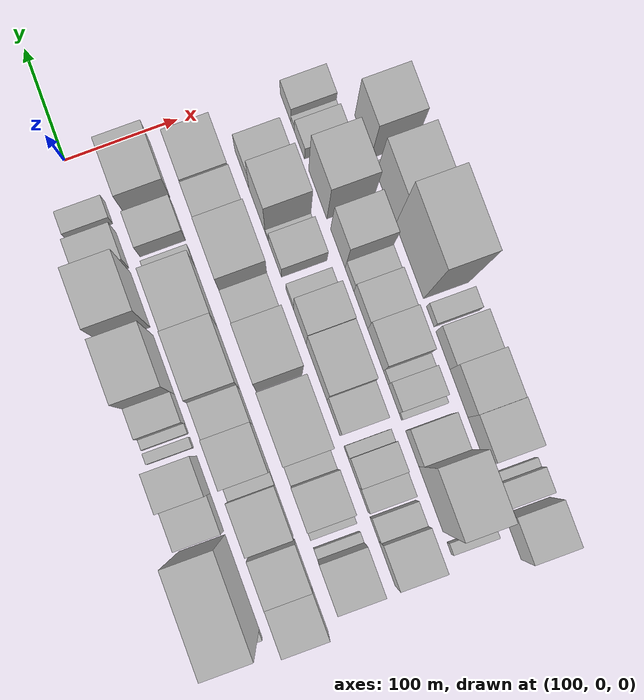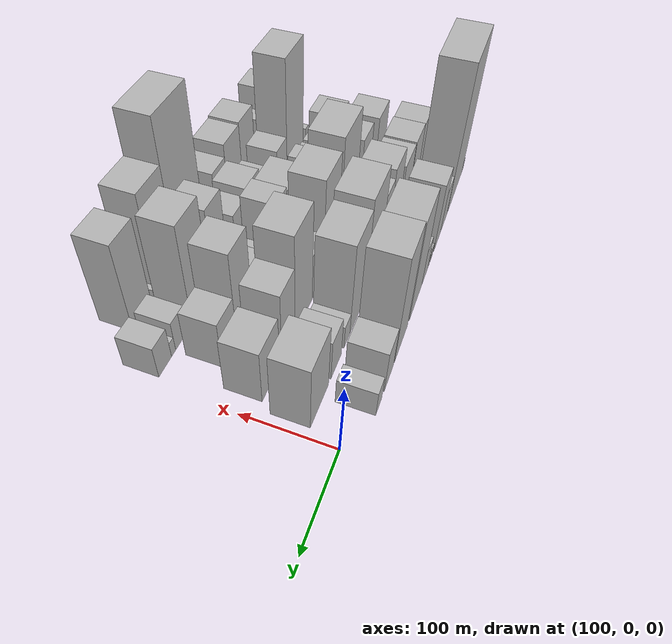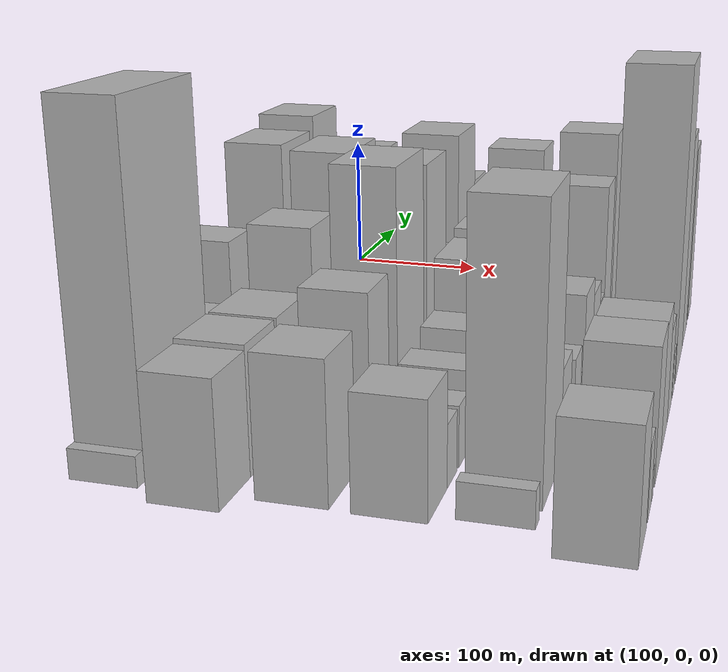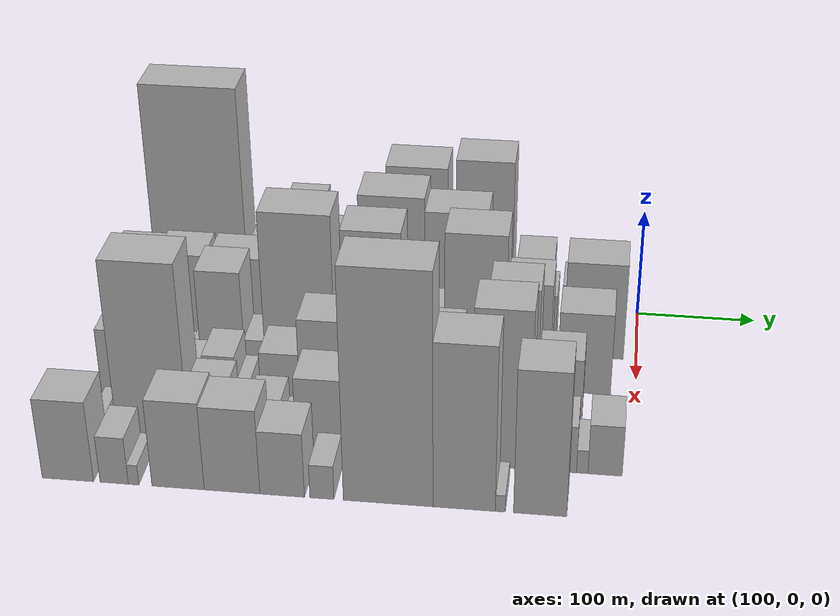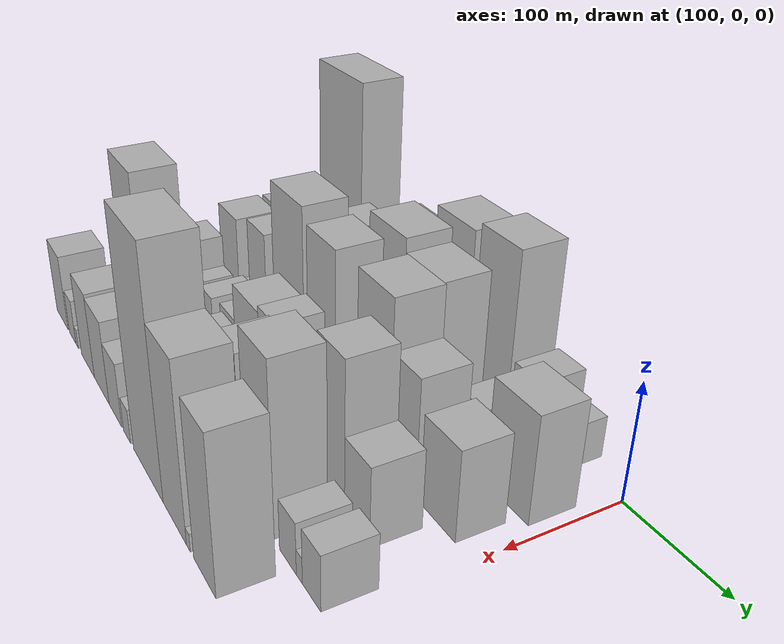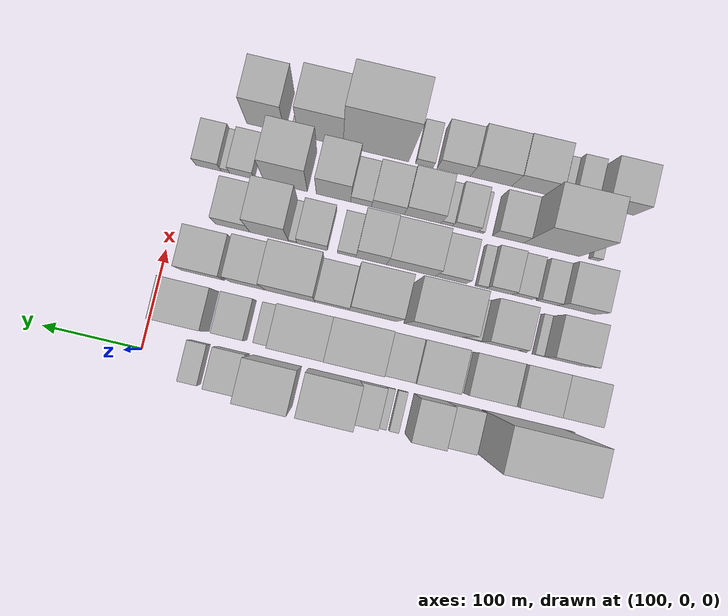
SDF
<sdf version="1.6">
 <world name="default">
  <model name="building_13">
   <static>1</static>
   <pose>100.0000 -422.3564 0 0.000000 0.000000 0.000000</pose>
   <link name="link">
    <pose>0 0 9.00 0 0 0</pose>
    <collision name="collision"><geometry><box><size>40.0000 7.9039 18.0000</size></box></geometry></collision>
    <visual name="visual">
     <cast_shadows>0</cast_shadows>
     <geometry><box><size>40.0000 7.9039 18.0000</size></box></geometry>
     <material>
      <script>
       <uri>model://HANNAS_wall/materials/scripts</uri>
       <uri>model://HANNAS_wall/materials/textures</uri>
       <name>vrc/HANNAS_wall</name>
      </script>
     </material>
    </visual>
   </link>
  </model>
  <model name="building_14">
   <static>1</static>
   <pose>100.0000 -377.7284 0 0.000000 0.000000 0.000000</pose>
   <link name="link">
    <pose>0 0 102.00 0 0 0</pose>
    <collision name="collision"><geometry><box><size>40.0000 81.3520 204.0000</size></box></geometry></collision>
    <visual name="visual">
     <cast_shadows>0</cast_shadows>
     <geometry><box><size>40.0000 81.3520 204.0000</size></box></geometry>
     <material>
      <script>
       <uri>model://HANNAS_wall/materials/scripts</uri>
       <uri>model://HANNAS_wall/materials/textures</uri>
       <name>vrc/HANNAS_wall</name>
      </script>
     </material>
    </visual>
   </link>
  </model>
  <model name="building_15">
   <static>1</static>
   <pose>100.0000 -317.7587 0 0.000000 0.000000 0.000000</pose>
   <link name="link">
    <pose>0 0 30.00 0 0 0</pose>
    <collision name="collision"><geometry><box><size>40.0000 32.5875 60.0000</size></box></geometry></collision>
    <visual name="visual">
     <cast_shadows>0</cast_shadows>
     <geometry><box><size>40.0000 32.5875 60.0000</size></box></geometry>
     <material>
      <script>
       <uri>model://HANNAS_wall/materials/scripts</uri>
       <uri>model://HANNAS_wall/materials/textures</uri>
       <name>vrc/HANNAS_wall</name>
      </script>
     </material>
    </visual>
   </link>
  </model>
  <model name="building_16">
   <static>1</static>
   <pose>100.0000 -285.1396 0 0.000000 0.000000 0.000000</pose>
   <link name="link">
    <pose>0 0 49.50 0 0 0</pose>
    <collision name="collision"><geometry><box><size>40.0000 32.6508 99.0000</size></box></geometry></collision>
    <visual name="visual">
     <cast_shadows>0</cast_shadows>
     <geometry><box><size>40.0000 32.6508 99.0000</size></box></geometry>
     <material>
      <script>
       <uri>model://HANNAS_wall/materials/scripts</uri>
       <uri>model://HANNAS_wall/materials/textures</uri>
       <name>vrc/HANNAS_wall</name>
      </script>
     </material>
    </visual>
   </link>
  </model>
  <model name="building_17">
   <static>1</static>
   <pose>100.0000 -257.1645 0 0.000000 0.000000 0.000000</pose>
   <link name="link">
    <pose>0 0 10.50 0 0 0</pose>
    <collision name="collision"><geometry><box><size>40.0000 9.2992 21.0000</size></box></geometry></collision>
    <visual name="visual">
     <cast_shadows>0</cast_shadows>
     <geometry><box><size>40.0000 9.2992 21.0000</size></box></geometry>
     <material>
      <script>
       <uri>model://HANNAS_wall/materials/scripts</uri>
       <uri>model://HANNAS_wall/materials/textures</uri>
       <name>vrc/HANNAS_wall</name>
      </script>
     </material>
    </visual>
   </link>
  </model>
  <model name="building_18">
   <static>1</static>
   <pose>100.0000 -245.1105 0 0.000000 0.000000 0.000000</pose>
   <link name="link">
    <pose>0 0 9.00 0 0 0</pose>
    <collision name="collision"><geometry><box><size>40.0000 8.8089 18.0000</size></box></geometry></collision>
    <visual name="visual">
     <cast_shadows>0</cast_shadows>
     <geometry><box><size>40.0000 8.8089 18.0000</size></box></geometry>
     <material>
      <script>
       <uri>model://HANNAS_wall/materials/scripts</uri>
       <uri>model://HANNAS_wall/materials/textures</uri>
       <name>vrc/HANNAS_wall</name>
      </script>
     </material>
    </visual>
   </link>
  </model>
  <model name="building_19">
   <static>1</static>
   <pose>100.0000 -227.7287 0 0.000000 0.000000 0.000000</pose>
   <link name="link">
    <pose>0 0 25.50 0 0 0</pose>
    <collision name="collision"><geometry><box><size>40.0000 25.9547 51.0000</size></box></geometry></collision>
    <visual name="visual">
     <cast_shadows>0</cast_shadows>
     <geometry><box><size>40.0000 25.9547 51.0000</size></box></geometry>
     <material>
      <script>
       <uri>model://HANNAS_wall/materials/scripts</uri>
       <uri>model://HANNAS_wall/materials/textures</uri>
       <name>vrc/HANNAS_wall</name>
      </script>
     </material>
    </visual>
   </link>
  </model>
  <model name="building_20">
   <static>1</static>
   <pose>100.0000 -188.9263 0 0.000000 0.000000 0.000000</pose>
   <link name="link">
    <pose>0 0 70.50 0 0 0</pose>
    <collision name="collision"><geometry><box><size>40.0000 51.6502 141.0000</size></box></geometry></collision>
    <visual name="visual">
     <cast_shadows>0</cast_shadows>
     <geometry><box><size>40.0000 51.6502 141.0000</size></box></geometry>
     <material>
      <script>
       <uri>model://HANNAS_wall/materials/scripts</uri>
       <uri>model://HANNAS_wall/materials/textures</uri>
       <name>vrc/HANNAS_wall</name>
      </script>
     </material>
    </visual>
   </link>
  </model>
  <model name="building_21">
   <static>1</static>
   <pose>100.0000 -131.9172 0 0.000000 0.000000 0.000000</pose>
   <link name="link">
    <pose>0 0 75.00 0 0 0</pose>
    <collision name="collision"><geometry><box><size>40.0000 48.3680 150.0000</size></box></geometry></collision>
    <visual name="visual">
     <cast_shadows>0</cast_shadows>
     <geometry><box><size>40.0000 48.3680 150.0000</size></box></geometry>
     <material>
      <script>
       <uri>model://HANNAS_wall/materials/scripts</uri>
       <uri>model://HANNAS_wall/materials/textures</uri>
       <name>vrc/HANNAS_wall</name>
      </script>
     </material>
    </visual>
   </link>
  </model>
  <model name="building_22">
   <static>1</static>
   <pose>100.0000 -87.9944 0 0.000000 0.000000 0.000000</pose>
   <link name="link">
    <pose>0 0 30.00 0 0 0</pose>
    <collision name="collision"><geometry><box><size>40.0000 31.4775 60.0000</size></box></geometry></collision>
    <visual name="visual">
     <cast_shadows>0</cast_shadows>
     <geometry><box><size>40.0000 31.4775 60.0000</size></box></geometry>
     <material>
      <script>
       <uri>model://HANNAS_wall/materials/scripts</uri>
       <uri>model://HANNAS_wall/materials/textures</uri>
       <name>vrc/HANNAS_wall</name>
      </script>
     </material>
    </visual>
   </link>
  </model>
  <model name="building_23">
   <static>1</static>
   <pose>100.0000 -54.5327 0 0.000000 0.000000 0.000000</pose>
   <link name="link">
    <pose>0 0 18.00 0 0 0</pose>
    <collision name="collision"><geometry><box><size>40.0000 19.4459 36.0000</size></box></geometry></collision>
    <visual name="visual">
     <cast_shadows>0</cast_shadows>
     <geometry><box><size>40.0000 19.4459 36.0000</size></box></geometry>
     <material>
      <script>
       <uri>model://HANNAS_wall/materials/scripts</uri>
       <uri>model://HANNAS_wall/materials/textures</uri>
       <name>vrc/HANNAS_wall</name>
      </script>
     </material>
    </visual>
   </link>
  </model>
  <model name="building_62">
   <static>1</static>
   <pose>152.0000 -419.5877 0 0.000000 0.000000 0.000000</pose>
   <link name="link">
    <pose>0 0 36.00 0 0 0</pose>
    <collision name="collision"><geometry><box><size>40.0000 39.2582 72.0000</size></box></geometry></collision>
    <visual name="visual">
     <cast_shadows>0</cast_shadows>
     <geometry><box><size>40.0000 39.2582 72.0000</size></box></geometry>
     <material>
      <script>
       <uri>model://HANNAS_wall/materials/scripts</uri>
       <uri>model://HANNAS_wall/materials/textures</uri>
       <name>vrc/HANNAS_wall</name>
      </script>
     </material>
    </visual>
   </link>
  </model>
  <model name="building_63">
   <static>1</static>
   <pose>152.0000 -379.9543 0 0.000000 0.000000 0.000000</pose>
   <link name="link">
    <pose>0 0 37.50 0 0 0</pose>
    <collision name="collision"><geometry><box><size>40.0000 40.0086 75.0000</size></box></geometry></collision>
    <visual name="visual">
     <cast_shadows>0</cast_shadows>
     <geometry><box><size>40.0000 40.0086 75.0000</size></box></geometry>
     <material>
      <script>
       <uri>model://HANNAS_wall/materials/scripts</uri>
       <uri>model://HANNAS_wall/materials/textures</uri>
       <name>vrc/HANNAS_wall</name>
      </script>
     </material>
    </visual>
   </link>
  </model>
  <model name="building_64">
   <static>1</static>
   <pose>152.0000 -334.7092 0 0.000000 0.000000 0.000000</pose>
   <link name="link">
    <pose>0 0 37.50 0 0 0</pose>
    <collision name="collision"><geometry><box><size>40.0000 44.4817 75.0000</size></box></geometry></collision>
    <visual name="visual">
     <cast_shadows>0</cast_shadows>
     <geometry><box><size>40.0000 44.4817 75.0000</size></box></geometry>
     <material>
      <script>
       <uri>model://HANNAS_wall/materials/scripts</uri>
       <uri>model://HANNAS_wall/materials/textures</uri>
       <name>vrc/HANNAS_wall</name>
      </script>
     </material>
    </visual>
   </link>
  </model>
  <model name="building_65">
   <static>1</static>
   <pose>152.0000 -306.8373 0 0.000000 0.000000 0.000000</pose>
   <link name="link">
    <pose>0 0 13.50 0 0 0</pose>
    <collision name="collision"><geometry><box><size>40.0000 11.2621 27.0000</size></box></geometry></collision>
    <visual name="visual">
     <cast_shadows>0</cast_shadows>
     <geometry><box><size>40.0000 11.2621 27.0000</size></box></geometry>
     <material>
      <script>
       <uri>model://HANNAS_wall/materials/scripts</uri>
       <uri>model://HANNAS_wall/materials/textures</uri>
       <name>vrc/HANNAS_wall</name>
      </script>
     </material>
    </visual>
   </link>
  </model>
  <model name="building_66">
   <static>1</static>
   <pose>152.0000 -280.8992 0 0.000000 0.000000 0.000000</pose>
   <link name="link">
    <pose>0 0 55.50 0 0 0</pose>
    <collision name="collision"><geometry><box><size>40.0000 40.6140 111.0000</size></box></geometry></collision>
    <visual name="visual">
     <cast_shadows>0</cast_shadows>
     <geometry><box><size>40.0000 40.6140 111.0000</size></box></geometry>
     <material>
      <script>
       <uri>model://HANNAS_wall/materials/scripts</uri>
       <uri>model://HANNAS_wall/materials/textures</uri>
       <name>vrc/HANNAS_wall</name>
      </script>
     </material>
    </visual>
   </link>
  </model>
  <model name="building_67">
   <static>1</static>
   <pose>152.0000 -245.4163 0 0.000000 0.000000 0.000000</pose>
   <link name="link">
    <pose>0 0 49.50 0 0 0</pose>
    <collision name="collision"><geometry><box><size>40.0000 30.3517 99.0000</size></box></geometry></collision>
    <visual name="visual">
     <cast_shadows>0</cast_shadows>
     <geometry><box><size>40.0000 30.3517 99.0000</size></box></geometry>
     <material>
      <script>
       <uri>model://HANNAS_wall/materials/scripts</uri>
       <uri>model://HANNAS_wall/materials/textures</uri>
       <name>vrc/HANNAS_wall</name>
      </script>
     </material>
    </visual>
   </link>
  </model>
  <model name="building_68">
   <static>1</static>
   <pose>152.0000 -203.0875 0 0.000000 0.000000 0.000000</pose>
   <link name="link">
    <pose>0 0 70.50 0 0 0</pose>
    <collision name="collision"><geometry><box><size>40.0000 54.3058 141.0000</size></box></geometry></collision>
    <visual name="visual">
     <cast_shadows>0</cast_shadows>
     <geometry><box><size>40.0000 54.3058 141.0000</size></box></geometry>
     <material>
      <script>
       <uri>model://HANNAS_wall/materials/scripts</uri>
       <uri>model://HANNAS_wall/materials/textures</uri>
       <name>vrc/HANNAS_wall</name>
      </script>
     </material>
    </visual>
   </link>
  </model>
  <model name="building_69">
   <static>1</static>
   <pose>152.0000 -150.2854 0 0.000000 0.000000 0.000000</pose>
   <link name="link">
    <pose>0 0 64.50 0 0 0</pose>
    <collision name="collision"><geometry><box><size>40.0000 51.2984 129.0000</size></box></geometry></collision>
    <visual name="visual">
     <cast_shadows>0</cast_shadows>
     <geometry><box><size>40.0000 51.2984 129.0000</size></box></geometry>
     <material>
      <script>
       <uri>model://HANNAS_wall/materials/scripts</uri>
       <uri>model://HANNAS_wall/materials/textures</uri>
       <name>vrc/HANNAS_wall</name>
      </script>
     </material>
    </visual>
   </link>
  </model>
  <model name="building_70">
   <static>1</static>
   <pose>152.0000 -115.3378 0 0.000000 0.000000 0.000000</pose>
   <link name="link">
    <pose>0 0 16.50 0 0 0</pose>
    <collision name="collision"><geometry><box><size>40.0000 18.5968 33.0000</size></box></geometry></collision>
    <visual name="visual">
     <cast_shadows>0</cast_shadows>
     <geometry><box><size>40.0000 18.5968 33.0000</size></box></geometry>
     <material>
      <script>
       <uri>model://HANNAS_wall/materials/scripts</uri>
       <uri>model://HANNAS_wall/materials/textures</uri>
       <name>vrc/HANNAS_wall</name>
      </script>
     </material>
    </visual>
   </link>
  </model>
  <model name="building_71">
   <static>1</static>
   <pose>152.0000 -82.5940 0 0.000000 0.000000 0.000000</pose>
   <link name="link">
    <pose>0 0 28.50 0 0 0</pose>
    <collision name="collision"><geometry><box><size>40.0000 30.8907 57.0000</size></box></geometry></collision>
    <visual name="visual">
     <cast_shadows>0</cast_shadows>
     <geometry><box><size>40.0000 30.8907 57.0000</size></box></geometry>
     <material>
      <script>
       <uri>model://HANNAS_wall/materials/scripts</uri>
       <uri>model://HANNAS_wall/materials/textures</uri>
       <name>vrc/HANNAS_wall</name>
      </script>
     </material>
    </visual>
   </link>
  </model>
  <model name="building_72">
   <static>1</static>
   <pose>152.0000 -35.5107 0 0.000000 0.000000 0.000000</pose>
   <link name="link">
    <pose>0 0 45.00 0 0 0</pose>
    <collision name="collision"><geometry><box><size>40.0000 49.2760 90.0000</size></box></geometry></collision>
    <visual name="visual">
     <cast_shadows>0</cast_shadows>
     <geometry><box><size>40.0000 49.2760 90.0000</size></box></geometry>
     <material>
      <script>
       <uri>model://HANNAS_wall/materials/scripts</uri>
       <uri>model://HANNAS_wall/materials/textures</uri>
       <name>vrc/HANNAS_wall</name>
      </script>
     </material>
    </visual>
   </link>
  </model>
  <model name="building_109">
   <static>1</static>
   <pose>204.0000 -401.6124 0 0.000000 0.000000 0.000000</pose>
   <link name="link">
    <pose>0 0 40.50 0 0 0</pose>
    <collision name="collision"><geometry><box><size>40.0000 41.6831 81.0000</size></box></geometry></collision>
    <visual name="visual">
     <cast_shadows>0</cast_shadows>
     <geometry><box><size>40.0000 41.6831 81.0000</size></box></geometry>
     <material>
      <script>
       <uri>model://HANNAS_wall/materials/scripts</uri>
       <uri>model://HANNAS_wall/materials/textures</uri>
       <name>vrc/HANNAS_wall</name>
      </script>
     </material>
    </visual>
   </link>
  </model>
  <model name="building_110">
   <static>1</static>
   <pose>204.0000 -376.3652 0 0.000000 0.000000 0.000000</pose>
   <link name="link">
    <pose>0 0 10.50 0 0 0</pose>
    <collision name="collision"><geometry><box><size>40.0000 8.8113 21.0000</size></box></geometry></collision>
    <visual name="visual">
     <cast_shadows>0</cast_shadows>
     <geometry><box><size>40.0000 8.8113 21.0000</size></box></geometry>
     <material>
      <script>
       <uri>model://HANNAS_wall/materials/scripts</uri>
       <uri>model://HANNAS_wall/materials/textures</uri>
       <name>vrc/HANNAS_wall</name>
      </script>
     </material>
    </visual>
   </link>
  </model>
  <model name="building_111">
   <static>1</static>
   <pose>204.0000 -361.8574 0 0.000000 0.000000 0.000000</pose>
   <link name="link">
    <pose>0 0 7.50 0 0 0</pose>
    <collision name="collision"><geometry><box><size>40.0000 6.2043 15.0000</size></box></geometry></collision>
    <visual name="visual">
     <cast_shadows>0</cast_shadows>
     <geometry><box><size>40.0000 6.2043 15.0000</size></box></geometry>
     <material>
      <script>
       <uri>model://HANNAS_wall/materials/scripts</uri>
       <uri>model://HANNAS_wall/materials/textures</uri>
       <name>vrc/HANNAS_wall</name>
      </script>
     </material>
    </visual>
   </link>
  </model>
  <model name="building_112">
   <static>1</static>
   <pose>204.0000 -336.4083 0 0.000000 0.000000 0.000000</pose>
   <link name="link">
    <pose>0 0 46.50 0 0 0</pose>
    <collision name="collision"><geometry><box><size>40.0000 36.6939 93.0000</size></box></geometry></collision>
    <visual name="visual">
     <cast_shadows>0</cast_shadows>
     <geometry><box><size>40.0000 36.6939 93.0000</size></box></geometry>
     <material>
      <script>
       <uri>model://HANNAS_wall/materials/scripts</uri>
       <uri>model://HANNAS_wall/materials/textures</uri>
       <name>vrc/HANNAS_wall</name>
      </script>
     </material>
    </visual>
   </link>
  </model>
  <model name="building_113">
   <static>1</static>
   <pose>204.0000 -309.5176 0 0.000000 0.000000 0.000000</pose>
   <link name="link">
    <pose>0 0 15.00 0 0 0</pose>
    <collision name="collision"><geometry><box><size>40.0000 17.0876 30.0000</size></box></geometry></collision>
    <visual name="visual">
     <cast_shadows>0</cast_shadows>
     <geometry><box><size>40.0000 17.0876 30.0000</size></box></geometry>
     <material>
      <script>
       <uri>model://HANNAS_wall/materials/scripts</uri>
       <uri>model://HANNAS_wall/materials/textures</uri>
       <name>vrc/HANNAS_wall</name>
      </script>
     </material>
    </visual>
   </link>
  </model>
  <model name="building_114">
   <static>1</static>
   <pose>204.0000 -272.1025 0 0.000000 0.000000 0.000000</pose>
   <link name="link">
    <pose>0 0 75.00 0 0 0</pose>
    <collision name="collision"><geometry><box><size>40.0000 57.7425 150.0000</size></box></geometry></collision>
    <visual name="visual">
     <cast_shadows>0</cast_shadows>
     <geometry><box><size>40.0000 57.7425 150.0000</size></box></geometry>
     <material>
      <script>
       <uri>model://HANNAS_wall/materials/scripts</uri>
       <uri>model://HANNAS_wall/materials/textures</uri>
       <name>vrc/HANNAS_wall</name>
      </script>
     </material>
    </visual>
   </link>
  </model>
  <model name="building_115">
   <static>1</static>
   <pose>204.0000 -212.2696 0 0.000000 0.000000 0.000000</pose>
   <link name="link">
    <pose>0 0 69.00 0 0 0</pose>
    <collision name="collision"><geometry><box><size>40.0000 47.9233 138.0000</size></box></geometry></collision>
    <visual name="visual">
     <cast_shadows>0</cast_shadows>
     <geometry><box><size>40.0000 47.9233 138.0000</size></box></geometry>
     <material>
      <script>
       <uri>model://HANNAS_wall/materials/scripts</uri>
       <uri>model://HANNAS_wall/materials/textures</uri>
       <name>vrc/HANNAS_wall</name>
      </script>
     </material>
    </visual>
   </link>
  </model>
  <model name="building_116">
   <static>1</static>
   <pose>204.0000 -171.1977 0 0.000000 0.000000 0.000000</pose>
   <link name="link">
    <pose>0 0 33.00 0 0 0</pose>
    <collision name="collision"><geometry><box><size>40.0000 34.2206 66.0000</size></box></geometry></collision>
    <visual name="visual">
     <cast_shadows>0</cast_shadows>
     <geometry><box><size>40.0000 34.2206 66.0000</size></box></geometry>
     <material>
      <script>
       <uri>model://HANNAS_wall/materials/scripts</uri>
       <uri>model://HANNAS_wall/materials/textures</uri>
       <name>vrc/HANNAS_wall</name>
      </script>
     </material>
    </visual>
   </link>
  </model>
  <model name="building_117">
   <static>1</static>
   <pose>204.0000 -129.4382 0 0.000000 0.000000 0.000000</pose>
   <link name="link">
    <pose>0 0 70.50 0 0 0</pose>
    <collision name="collision"><geometry><box><size>40.0000 49.2983 141.0000</size></box></geometry></collision>
    <visual name="visual">
     <cast_shadows>0</cast_shadows>
     <geometry><box><size>40.0000 49.2983 141.0000</size></box></geometry>
     <material>
      <script>
       <uri>model://HANNAS_wall/materials/scripts</uri>
       <uri>model://HANNAS_wall/materials/textures</uri>
       <name>vrc/HANNAS_wall</name>
      </script>
     </material>
    </visual>
   </link>
  </model>
  <model name="building_118">
   <static>1</static>
   <pose>204.0000 -86.8539 0 0.000000 0.000000 0.000000</pose>
   <link name="link">
    <pose>0 0 49.50 0 0 0</pose>
    <collision name="collision"><geometry><box><size>40.0000 35.8703 99.0000</size></box></geometry></collision>
    <visual name="visual">
     <cast_shadows>0</cast_shadows>
     <geometry><box><size>40.0000 35.8703 99.0000</size></box></geometry>
     <material>
      <script>
       <uri>model://HANNAS_wall/materials/scripts</uri>
       <uri>model://HANNAS_wall/materials/textures</uri>
       <name>vrc/HANNAS_wall</name>
      </script>
     </material>
    </visual>
   </link>
  </model>
  <model name="building_119">
   <static>1</static>
   <pose>204.0000 -41.4855 0 0.000000 0.000000 0.000000</pose>
   <link name="link">
    <pose>0 0 37.50 0 0 0</pose>
    <collision name="collision"><geometry><box><size>40.0000 42.8665 75.0000</size></box></geometry></collision>
    <visual name="visual">
     <cast_shadows>0</cast_shadows>
     <geometry><box><size>40.0000 42.8665 75.0000</size></box></geometry>
     <material>
      <script>
       <uri>model://HANNAS_wall/materials/scripts</uri>
       <uri>model://HANNAS_wall/materials/textures</uri>
       <name>vrc/HANNAS_wall</name>
      </script>
     </material>
    </visual>
   </link>
  </model>
  <model name="building_155">
   <static>1</static>
   <pose>256.0000 -404.3459 0 0.000000 0.000000 0.000000</pose>
   <link name="link">
    <pose>0 0 33.00 0 0 0</pose>
    <collision name="collision"><geometry><box><size>40.0000 38.1281 66.0000</size></box></geometry></collision>
    <visual name="visual">
     <cast_shadows>0</cast_shadows>
     <geometry><box><size>40.0000 38.1281 66.0000</size></box></geometry>
     <material>
      <script>
       <uri>model://HANNAS_wall/materials/scripts</uri>
       <uri>model://HANNAS_wall/materials/textures</uri>
       <name>vrc/HANNAS_wall</name>
      </script>
     </material>
    </visual>
   </link>
  </model>
  <model name="building_156">
   <static>1</static>
   <pose>256.0000 -374.8110 0 0.000000 0.000000 0.000000</pose>
   <link name="link">
    <pose>0 0 18.00 0 0 0</pose>
    <collision name="collision"><geometry><box><size>40.0000 20.9417 36.0000</size></box></geometry></collision>
    <visual name="visual">
     <cast_shadows>0</cast_shadows>
     <geometry><box><size>40.0000 20.9417 36.0000</size></box></geometry>
     <material>
      <script>
       <uri>model://HANNAS_wall/materials/scripts</uri>
       <uri>model://HANNAS_wall/materials/textures</uri>
       <name>vrc/HANNAS_wall</name>
      </script>
     </material>
    </visual>
   </link>
  </model>
  <model name="building_157">
   <static>1</static>
   <pose>256.0000 -349.8889 0 0.000000 0.000000 0.000000</pose>
   <link name="link">
    <pose>0 0 18.00 0 0 0</pose>
    <collision name="collision"><geometry><box><size>40.0000 20.9024 36.0000</size></box></geometry></collision>
    <visual name="visual">
     <cast_shadows>0</cast_shadows>
     <geometry><box><size>40.0000 20.9024 36.0000</size></box></geometry>
     <material>
      <script>
       <uri>model://HANNAS_wall/materials/scripts</uri>
       <uri>model://HANNAS_wall/materials/textures</uri>
       <name>vrc/HANNAS_wall</name>
      </script>
     </material>
    </visual>
   </link>
  </model>
  <model name="building_158">
   <static>1</static>
   <pose>256.0000 -326.5138 0 0.000000 0.000000 0.000000</pose>
   <link name="link">
    <pose>0 0 24.00 0 0 0</pose>
    <collision name="collision"><geometry><box><size>40.0000 25.8478 48.0000</size></box></geometry></collision>
    <visual name="visual">
     <cast_shadows>0</cast_shadows>
     <geometry><box><size>40.0000 25.8478 48.0000</size></box></geometry>
     <material>
      <script>
       <uri>model://HANNAS_wall/materials/scripts</uri>
       <uri>model://HANNAS_wall/materials/textures</uri>
       <name>vrc/HANNAS_wall</name>
      </script>
     </material>
    </visual>
   </link>
  </model>
  <model name="building_159">
   <static>1</static>
   <pose>256.0000 -308.2112 0 0.000000 0.000000 0.000000</pose>
   <link name="link">
    <pose>0 0 12.00 0 0 0</pose>
    <collision name="collision"><geometry><box><size>40.0000 10.7575 24.0000</size></box></geometry></collision>
    <visual name="visual">
     <cast_shadows>0</cast_shadows>
     <geometry><box><size>40.0000 10.7575 24.0000</size></box></geometry>
     <material>
      <script>
       <uri>model://HANNAS_wall/materials/scripts</uri>
       <uri>model://HANNAS_wall/materials/textures</uri>
       <name>vrc/HANNAS_wall</name>
      </script>
     </material>
    </visual>
   </link>
  </model>
  <model name="building_160">
   <static>1</static>
   <pose>256.0000 -278.2538 0 0.000000 0.000000 0.000000</pose>
   <link name="link">
    <pose>0 0 27.00 0 0 0</pose>
    <collision name="collision"><geometry><box><size>40.0000 31.1573 54.0000</size></box></geometry></collision>
    <visual name="visual">
     <cast_shadows>0</cast_shadows>
     <geometry><box><size>40.0000 31.1573 54.0000</size></box></geometry>
     <material>
      <script>
       <uri>model://HANNAS_wall/materials/scripts</uri>
       <uri>model://HANNAS_wall/materials/textures</uri>
       <name>vrc/HANNAS_wall</name>
      </script>
     </material>
    </visual>
   </link>
  </model>
  <model name="building_161">
   <static>1</static>
   <pose>256.0000 -238.0769 0 0.000000 0.000000 0.000000</pose>
   <link name="link">
    <pose>0 0 43.50 0 0 0</pose>
    <collision name="collision"><geometry><box><size>40.0000 49.1965 87.0000</size></box></geometry></collision>
    <visual name="visual">
     <cast_shadows>0</cast_shadows>
     <geometry><box><size>40.0000 49.1965 87.0000</size></box></geometry>
     <material>
      <script>
       <uri>model://HANNAS_wall/materials/scripts</uri>
       <uri>model://HANNAS_wall/materials/textures</uri>
       <name>vrc/HANNAS_wall</name>
      </script>
     </material>
    </visual>
   </link>
  </model>
  <model name="building_162">
   <static>1</static>
   <pose>256.0000 -198.1346 0 0.000000 0.000000 0.000000</pose>
   <link name="link">
    <pose>0 0 46.50 0 0 0</pose>
    <collision name="collision"><geometry><box><size>40.0000 30.6881 93.0000</size></box></geometry></collision>
    <visual name="visual">
     <cast_shadows>0</cast_shadows>
     <geometry><box><size>40.0000 30.6881 93.0000</size></box></geometry>
     <material>
      <script>
       <uri>model://HANNAS_wall/materials/scripts</uri>
       <uri>model://HANNAS_wall/materials/textures</uri>
       <name>vrc/HANNAS_wall</name>
      </script>
     </material>
    </visual>
   </link>
  </model>
  <model name="building_163">
   <static>1</static>
   <pose>256.0000 -173.4544 0 0.000000 0.000000 0.000000</pose>
   <link name="link">
    <pose>0 0 16.50 0 0 0</pose>
    <collision name="collision"><geometry><box><size>40.0000 18.6724 33.0000</size></box></geometry></collision>
    <visual name="visual">
     <cast_shadows>0</cast_shadows>
     <geometry><box><size>40.0000 18.6724 33.0000</size></box></geometry>
     <material>
      <script>
       <uri>model://HANNAS_wall/materials/scripts</uri>
       <uri>model://HANNAS_wall/materials/textures</uri>
       <name>vrc/HANNAS_wall</name>
      </script>
     </material>
    </visual>
   </link>
  </model>
  <model name="building_164">
   <static>1</static>
   <pose>256.0000 -138.8068 0 0.000000 0.000000 0.000000</pose>
   <link name="link">
    <pose>0 0 27.00 0 0 0</pose>
    <collision name="collision"><geometry><box><size>40.0000 30.6228 54.0000</size></box></geometry></collision>
    <visual name="visual">
     <cast_shadows>0</cast_shadows>
     <geometry><box><size>40.0000 30.6228 54.0000</size></box></geometry>
     <material>
      <script>
       <uri>model://HANNAS_wall/materials/scripts</uri>
       <uri>model://HANNAS_wall/materials/textures</uri>
       <name>vrc/HANNAS_wall</name>
      </script>
     </material>
    </visual>
   </link>
  </model>
  <model name="building_165">
   <static>1</static>
   <pose>256.0000 -119.2116 0 0.000000 0.000000 0.000000</pose>
   <link name="link">
    <pose>0 0 9.00 0 0 0</pose>
    <collision name="collision"><geometry><box><size>40.0000 8.5675 18.0000</size></box></geometry></collision>
    <visual name="visual">
     <cast_shadows>0</cast_shadows>
     <geometry><box><size>40.0000 8.5675 18.0000</size></box></geometry>
     <material>
      <script>
       <uri>model://HANNAS_wall/materials/scripts</uri>
       <uri>model://HANNAS_wall/materials/textures</uri>
       <name>vrc/HANNAS_wall</name>
      </script>
     </material>
    </visual>
   </link>
  </model>
  <model name="building_166">
   <static>1</static>
   <pose>256.0000 -95.4758 0 0.000000 0.000000 0.000000</pose>
   <link name="link">
    <pose>0 0 63.00 0 0 0</pose>
    <collision name="collision"><geometry><box><size>40.0000 38.9042 126.0000</size></box></geometry></collision>
    <visual name="visual">
     <cast_shadows>0</cast_shadows>
     <geometry><box><size>40.0000 38.9042 126.0000</size></box></geometry>
     <material>
      <script>
       <uri>model://HANNAS_wall/materials/scripts</uri>
       <uri>model://HANNAS_wall/materials/textures</uri>
       <name>vrc/HANNAS_wall</name>
      </script>
     </material>
    </visual>
   </link>
  </model>
  <model name="building_167">
   <static>1</static>
   <pose>256.0000 -58.6925 0 0.000000 0.000000 0.000000</pose>
   <link name="link">
    <pose>0 0 33.00 0 0 0</pose>
    <collision name="collision"><geometry><box><size>40.0000 34.6623 66.0000</size></box></geometry></collision>
    <visual name="visual">
     <cast_shadows>0</cast_shadows>
     <geometry><box><size>40.0000 34.6623 66.0000</size></box></geometry>
     <material>
      <script>
       <uri>model://HANNAS_wall/materials/scripts</uri>
       <uri>model://HANNAS_wall/materials/textures</uri>
       <name>vrc/HANNAS_wall</name>
      </script>
     </material>
    </visual>
   </link>
  </model>
  <model name="building_199">
   <static>1</static>
   <pose>308.0000 -410.3328 0 0.000000 0.000000 0.000000</pose>
   <link name="link">
    <pose>0 0 10.50 0 0 0</pose>
    <collision name="collision"><geometry><box><size>40.0000 10.3147 21.0000</size></box></geometry></collision>
    <visual name="visual">
     <cast_shadows>0</cast_shadows>
     <geometry><box><size>40.0000 10.3147 21.0000</size></box></geometry>
     <material>
      <script>
       <uri>model://HANNAS_wall/materials/scripts</uri>
       <uri>model://HANNAS_wall/materials/textures</uri>
       <name>vrc/HANNAS_wall</name>
      </script>
     </material>
    </visual>
   </link>
  </model>
  <model name="building_200">
   <static>1</static>
   <pose>308.0000 -367.8675 0 0.000000 0.000000 0.000000</pose>
   <link name="link">
    <pose>0 0 81.00 0 0 0</pose>
    <collision name="collision"><geometry><box><size>40.0000 56.6160 162.0000</size></box></geometry></collision>
    <visual name="visual">
     <cast_shadows>0</cast_shadows>
     <geometry><box><size>40.0000 56.6160 162.0000</size></box></geometry>
     <material>
      <script>
       <uri>model://HANNAS_wall/materials/scripts</uri>
       <uri>model://HANNAS_wall/materials/textures</uri>
       <name>vrc/HANNAS_wall</name>
      </script>
     </material>
    </visual>
   </link>
  </model>
  <model name="building_201">
   <static>1</static>
   <pose>308.0000 -323.9216 0 0.000000 0.000000 0.000000</pose>
   <link name="link">
    <pose>0 0 27.00 0 0 0</pose>
    <collision name="collision"><geometry><box><size>40.0000 31.2757 54.0000</size></box></geometry></collision>
    <visual name="visual">
     <cast_shadows>0</cast_shadows>
     <geometry><box><size>40.0000 31.2757 54.0000</size></box></geometry>
     <material>
      <script>
       <uri>model://HANNAS_wall/materials/scripts</uri>
       <uri>model://HANNAS_wall/materials/textures</uri>
       <name>vrc/HANNAS_wall</name>
      </script>
     </material>
    </visual>
   </link>
  </model>
  <model name="building_202">
   <static>1</static>
   <pose>308.0000 -296.2280 0 0.000000 0.000000 0.000000</pose>
   <link name="link">
    <pose>0 0 7.50 0 0 0</pose>
    <collision name="collision"><geometry><box><size>40.0000 6.1115 15.0000</size></box></geometry></collision>
    <visual name="visual">
     <cast_shadows>0</cast_shadows>
     <geometry><box><size>40.0000 6.1115 15.0000</size></box></geometry>
     <material>
      <script>
       <uri>model://HANNAS_wall/materials/scripts</uri>
       <uri>model://HANNAS_wall/materials/textures</uri>
       <name>vrc/HANNAS_wall</name>
      </script>
     </material>
    </visual>
   </link>
  </model>
  <model name="building_203">
   <static>1</static>
   <pose>308.0000 -280.5920 0 0.000000 0.000000 0.000000</pose>
   <link name="link">
    <pose>0 0 21.00 0 0 0</pose>
    <collision name="collision"><geometry><box><size>40.0000 25.1604 42.0000</size></box></geometry></collision>
    <visual name="visual">
     <cast_shadows>0</cast_shadows>
     <geometry><box><size>40.0000 25.1604 42.0000</size></box></geometry>
     <material>
      <script>
       <uri>model://HANNAS_wall/materials/scripts</uri>
       <uri>model://HANNAS_wall/materials/textures</uri>
       <name>vrc/HANNAS_wall</name>
      </script>
     </material>
    </visual>
   </link>
  </model>
  <model name="building_204">
   <static>1</static>
   <pose>308.0000 -262.1484 0 0.000000 0.000000 0.000000</pose>
   <link name="link">
    <pose>0 0 12.00 0 0 0</pose>
    <collision name="collision"><geometry><box><size>40.0000 11.7269 24.0000</size></box></geometry></collision>
    <visual name="visual">
     <cast_shadows>0</cast_shadows>
     <geometry><box><size>40.0000 11.7269 24.0000</size></box></geometry>
     <material>
      <script>
       <uri>model://HANNAS_wall/materials/scripts</uri>
       <uri>model://HANNAS_wall/materials/textures</uri>
       <name>vrc/HANNAS_wall</name>
      </script>
     </material>
    </visual>
   </link>
  </model>
  <model name="building_205">
   <static>1</static>
   <pose>308.0000 -237.6766 0 0.000000 0.000000 0.000000</pose>
   <link name="link">
    <pose>0 0 34.50 0 0 0</pose>
    <collision name="collision"><geometry><box><size>40.0000 37.2167 69.0000</size></box></geometry></collision>
    <visual name="visual">
     <cast_shadows>0</cast_shadows>
     <geometry><box><size>40.0000 37.2167 69.0000</size></box></geometry>
     <material>
      <script>
       <uri>model://HANNAS_wall/materials/scripts</uri>
       <uri>model://HANNAS_wall/materials/textures</uri>
       <name>vrc/HANNAS_wall</name>
      </script>
     </material>
    </visual>
   </link>
  </model>
  <model name="building_206">
   <static>1</static>
   <pose>308.0000 -202.5527 0 0.000000 0.000000 0.000000</pose>
   <link name="link">
    <pose>0 0 28.50 0 0 0</pose>
    <collision name="collision"><geometry><box><size>40.0000 33.0309 57.0000</size></box></geometry></collision>
    <visual name="visual">
     <cast_shadows>0</cast_shadows>
     <geometry><box><size>40.0000 33.0309 57.0000</size></box></geometry>
     <material>
      <script>
       <uri>model://HANNAS_wall/materials/scripts</uri>
       <uri>model://HANNAS_wall/materials/textures</uri>
       <name>vrc/HANNAS_wall</name>
      </script>
     </material>
    </visual>
   </link>
  </model>
  <model name="building_207">
   <static>1</static>
   <pose>308.0000 -175.5306 0 0.000000 0.000000 0.000000</pose>
   <link name="link">
    <pose>0 0 21.00 0 0 0</pose>
    <collision name="collision"><geometry><box><size>40.0000 21.0133 42.0000</size></box></geometry></collision>
    <visual name="visual">
     <cast_shadows>0</cast_shadows>
     <geometry><box><size>40.0000 21.0133 42.0000</size></box></geometry>
     <material>
      <script>
       <uri>model://HANNAS_wall/materials/scripts</uri>
       <uri>model://HANNAS_wall/materials/textures</uri>
       <name>vrc/HANNAS_wall</name>
      </script>
     </material>
    </visual>
   </link>
  </model>
  <model name="building_208">
   <static>1</static>
   <pose>308.0000 -147.7259 0 0.000000 0.000000 0.000000</pose>
   <link name="link">
    <pose>0 0 57.00 0 0 0</pose>
    <collision name="collision"><geometry><box><size>40.0000 34.5962 114.0000</size></box></geometry></collision>
    <visual name="visual">
     <cast_shadows>0</cast_shadows>
     <geometry><box><size>40.0000 34.5962 114.0000</size></box></geometry>
     <material>
      <script>
       <uri>model://HANNAS_wall/materials/scripts</uri>
       <uri>model://HANNAS_wall/materials/textures</uri>
       <name>vrc/HANNAS_wall</name>
      </script>
     </material>
    </visual>
   </link>
  </model>
  <model name="building_209">
   <static>1</static>
   <pose>308.0000 -99.5868 0 0.000000 0.000000 0.000000</pose>
   <link name="link">
    <pose>0 0 70.50 0 0 0</pose>
    <collision name="collision"><geometry><box><size>40.0000 43.6819 141.0000</size></box></geometry></collision>
    <visual name="visual">
     <cast_shadows>0</cast_shadows>
     <geometry><box><size>40.0000 43.6819 141.0000</size></box></geometry>
     <material>
      <script>
       <uri>model://HANNAS_wall/materials/scripts</uri>
       <uri>model://HANNAS_wall/materials/textures</uri>
       <name>vrc/HANNAS_wall</name>
      </script>
     </material>
    </visual>
   </link>
  </model>
  <model name="building_210">
   <static>1</static>
   <pose>308.0000 -55.2393 0 0.000000 0.000000 0.000000</pose>
   <link name="link">
    <pose>0 0 21.00 0 0 0</pose>
    <collision name="collision"><geometry><box><size>40.0000 25.0131 42.0000</size></box></geometry></collision>
    <visual name="visual">
     <cast_shadows>0</cast_shadows>
     <geometry><box><size>40.0000 25.0131 42.0000</size></box></geometry>
     <material>
      <script>
       <uri>model://HANNAS_wall/materials/scripts</uri>
       <uri>model://HANNAS_wall/materials/textures</uri>
       <name>vrc/HANNAS_wall</name>
      </script>
     </material>
    </visual>
   </link>
  </model>
  <model name="building_211">
   <static>1</static>
   <pose>308.0000 -38.4261 0 0.000000 0.000000 0.000000</pose>
   <link name="link">
    <pose>0 0 10.50 0 0 0</pose>
    <collision name="collision"><geometry><box><size>40.0000 8.6133 21.0000</size></box></geometry></collision>
    <visual name="visual">
     <cast_shadows>0</cast_shadows>
     <geometry><box><size>40.0000 8.6133 21.0000</size></box></geometry>
     <material>
      <script>
       <uri>model://HANNAS_wall/materials/scripts</uri>
       <uri>model://HANNAS_wall/materials/textures</uri>
       <name>vrc/HANNAS_wall</name>
      </script>
     </material>
    </visual>
   </link>
  </model>
  <model name="building_212">
   <static>1</static>
   <pose>308.0000 -21.3358 0 0.000000 0.000000 0.000000</pose>
   <link name="link">
    <pose>0 0 22.50 0 0 0</pose>
    <collision name="collision"><geometry><box><size>40.0000 25.5675 45.0000</size></box></geometry></collision>
    <visual name="visual">
     <cast_shadows>0</cast_shadows>
     <geometry><box><size>40.0000 25.5675 45.0000</size></box></geometry>
     <material>
      <script>
       <uri>model://HANNAS_wall/materials/scripts</uri>
       <uri>model://HANNAS_wall/materials/textures</uri>
       <name>vrc/HANNAS_wall</name>
      </script>
     </material>
    </visual>
   </link>
  </model>
  <model name="building_248">
   <static>1</static>
   <pose>360.0000 -419.5492 0 0.000000 0.000000 0.000000</pose>
   <link name="link">
    <pose>0 0 36.00 0 0 0</pose>
    <collision name="collision"><geometry><box><size>40.0000 39.3435 72.0000</size></box></geometry></collision>
    <visual name="visual">
     <cast_shadows>0</cast_shadows>
     <geometry><box><size>40.0000 39.3435 72.0000</size></box></geometry>
     <material>
      <script>
       <uri>model://HANNAS_wall/materials/scripts</uri>
       <uri>model://HANNAS_wall/materials/textures</uri>
       <name>vrc/HANNAS_wall</name>
      </script>
     </material>
    </visual>
   </link>
  </model>
  <model name="building_249">
   <static>1</static>
   <pose>360.0000 -384.0918 0 0.000000 0.000000 0.000000</pose>
   <link name="link">
    <pose>0 0 21.00 0 0 0</pose>
    <collision name="collision"><geometry><box><size>40.0000 21.5712 42.0000</size></box></geometry></collision>
    <visual name="visual">
     <cast_shadows>0</cast_shadows>
     <geometry><box><size>40.0000 21.5712 42.0000</size></box></geometry>
     <material>
      <script>
       <uri>model://HANNAS_wall/materials/scripts</uri>
       <uri>model://HANNAS_wall/materials/textures</uri>
       <name>vrc/HANNAS_wall</name>
      </script>
     </material>
    </visual>
   </link>
  </model>
  <model name="building_250">
   <static>1</static>
   <pose>360.0000 -369.2960 0 0.000000 0.000000 0.000000</pose>
   <link name="link">
    <pose>0 0 9.00 0 0 0</pose>
    <collision name="collision"><geometry><box><size>40.0000 8.0205 18.0000</size></box></geometry></collision>
    <visual name="visual">
     <cast_shadows>0</cast_shadows>
     <geometry><box><size>40.0000 8.0205 18.0000</size></box></geometry>
     <material>
      <script>
       <uri>model://HANNAS_wall/materials/scripts</uri>
       <uri>model://HANNAS_wall/materials/textures</uri>
       <name>vrc/HANNAS_wall</name>
      </script>
     </material>
    </visual>
   </link>
  </model>
  <model name="building_251">
   <static>1</static>
   <pose>360.0000 -335.4677 0 0.000000 0.000000 0.000000</pose>
   <link name="link">
    <pose>0 0 39.00 0 0 0</pose>
    <collision name="collision"><geometry><box><size>40.0000 39.6361 78.0000</size></box></geometry></collision>
    <visual name="visual">
     <cast_shadows>0</cast_shadows>
     <geometry><box><size>40.0000 39.6361 78.0000</size></box></geometry>
     <material>
      <script>
       <uri>model://HANNAS_wall/materials/scripts</uri>
       <uri>model://HANNAS_wall/materials/textures</uri>
       <name>vrc/HANNAS_wall</name>
      </script>
     </material>
    </visual>
   </link>
  </model>
  <model name="building_252">
   <static>1</static>
   <pose>360.0000 -294.7032 0 0.000000 0.000000 0.000000</pose>
   <link name="link">
    <pose>0 0 37.50 0 0 0</pose>
    <collision name="collision"><geometry><box><size>40.0000 41.8929 75.0000</size></box></geometry></collision>
    <visual name="visual">
     <cast_shadows>0</cast_shadows>
     <geometry><box><size>40.0000 41.8929 75.0000</size></box></geometry>
     <material>
      <script>
       <uri>model://HANNAS_wall/materials/scripts</uri>
       <uri>model://HANNAS_wall/materials/textures</uri>
       <name>vrc/HANNAS_wall</name>
      </script>
     </material>
    </visual>
   </link>
  </model>
  <model name="building_253">
   <static>1</static>
   <pose>360.0000 -257.0446 0 0.000000 0.000000 0.000000</pose>
   <link name="link">
    <pose>0 0 28.50 0 0 0</pose>
    <collision name="collision"><geometry><box><size>40.0000 33.4245 57.0000</size></box></geometry></collision>
    <visual name="visual">
     <cast_shadows>0</cast_shadows>
     <geometry><box><size>40.0000 33.4245 57.0000</size></box></geometry>
     <material>
      <script>
       <uri>model://HANNAS_wall/materials/scripts</uri>
       <uri>model://HANNAS_wall/materials/textures</uri>
       <name>vrc/HANNAS_wall</name>
      </script>
     </material>
    </visual>
   </link>
  </model>
  <model name="building_254">
   <static>1</static>
   <pose>360.0000 -227.3524 0 0.000000 0.000000 0.000000</pose>
   <link name="link">
    <pose>0 0 15.00 0 0 0</pose>
    <collision name="collision"><geometry><box><size>40.0000 17.9598 30.0000</size></box></geometry></collision>
    <visual name="visual">
     <cast_shadows>0</cast_shadows>
     <geometry><box><size>40.0000 17.9598 30.0000</size></box></geometry>
     <material>
      <script>
       <uri>model://HANNAS_wall/materials/scripts</uri>
       <uri>model://HANNAS_wall/materials/textures</uri>
       <name>vrc/HANNAS_wall</name>
      </script>
     </material>
    </visual>
   </link>
  </model>
  <model name="building_255">
   <static>1</static>
   <pose>360.0000 -178.2683 0 0.000000 0.000000 0.000000</pose>
   <link name="link">
    <pose>0 0 100.50 0 0 0</pose>
    <collision name="collision"><geometry><box><size>40.0000 66.2083 201.0000</size></box></geometry></collision>
    <visual name="visual">
     <cast_shadows>0</cast_shadows>
     <geometry><box><size>40.0000 66.2083 201.0000</size></box></geometry>
     <material>
      <script>
       <uri>model://HANNAS_wall/materials/scripts</uri>
       <uri>model://HANNAS_wall/materials/textures</uri>
       <name>vrc/HANNAS_wall</name>
      </script>
     </material>
    </visual>
   </link>
  </model>
  <model name="building_256">
   <static>1</static>
   <pose>360.0000 -122.2995 0 0.000000 0.000000 0.000000</pose>
   <link name="link">
    <pose>0 0 72.00 0 0 0</pose>
    <collision name="collision"><geometry><box><size>40.0000 45.7294 144.0000</size></box></geometry></collision>
    <visual name="visual">
     <cast_shadows>0</cast_shadows>
     <geometry><box><size>40.0000 45.7294 144.0000</size></box></geometry>
     <material>
      <script>
       <uri>model://HANNAS_wall/materials/scripts</uri>
       <uri>model://HANNAS_wall/materials/textures</uri>
       <name>vrc/HANNAS_wall</name>
      </script>
     </material>
    </visual>
   </link>
  </model>
  <model name="building_257">
   <static>1</static>
   <pose>360.0000 -95.7909 0 0.000000 0.000000 0.000000</pose>
   <link name="link">
    <pose>0 0 7.50 0 0 0</pose>
    <collision name="collision"><geometry><box><size>40.0000 7.2878 15.0000</size></box></geometry></collision>
    <visual name="visual">
     <cast_shadows>0</cast_shadows>
     <geometry><box><size>40.0000 7.2878 15.0000</size></box></geometry>
     <material>
      <script>
       <uri>model://HANNAS_wall/materials/scripts</uri>
       <uri>model://HANNAS_wall/materials/textures</uri>
       <name>vrc/HANNAS_wall</name>
      </script>
     </material>
    </visual>
   </link>
  </model>
  <model name="building_258">
   <static>1</static>
   <pose>360.0000 -66.8373 0 0.000000 0.000000 0.000000</pose>
   <link name="link">
    <pose>0 0 63.00 0 0 0</pose>
    <collision name="collision"><geometry><box><size>40.0000 38.6195 126.0000</size></box></geometry></collision>
    <visual name="visual">
     <cast_shadows>0</cast_shadows>
     <geometry><box><size>40.0000 38.6195 126.0000</size></box></geometry>
     <material>
      <script>
       <uri>model://HANNAS_wall/materials/scripts</uri>
       <uri>model://HANNAS_wall/materials/textures</uri>
       <name>vrc/HANNAS_wall</name>
      </script>
     </material>
    </visual>
   </link>
  </model>
 </world>
</sdf>
